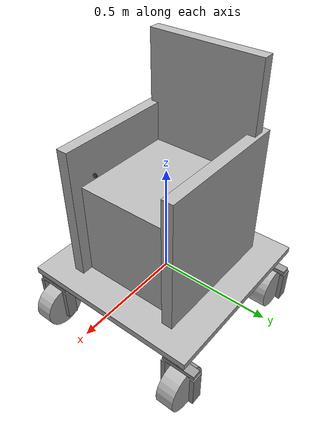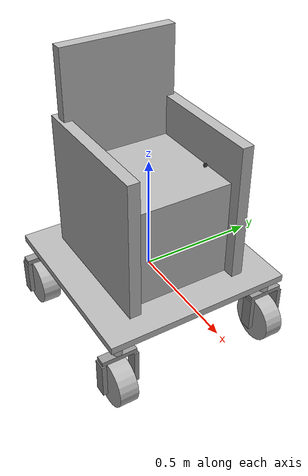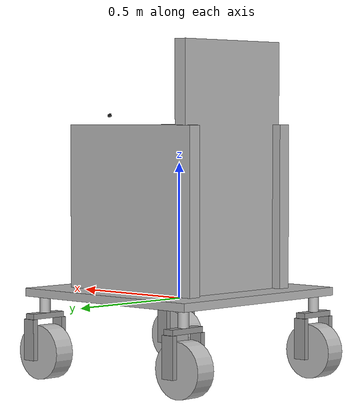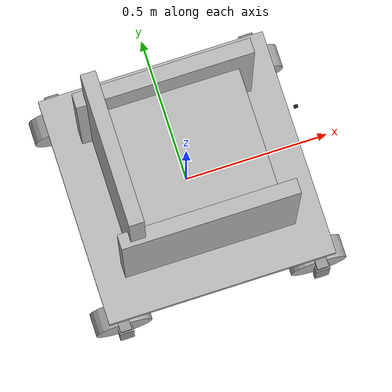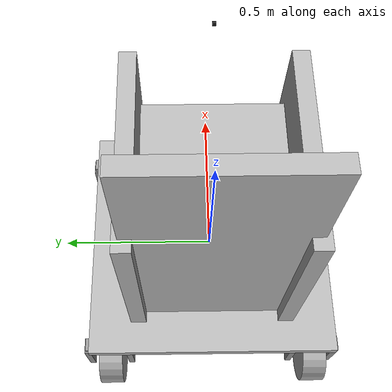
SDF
<sdf version='1.7'>
  <model name='new_wheelchair'>
    <link name='base_link'>
      <inertial>
        <pose>-0.001281 -0 0.086388 0 -0 0</pose>
        <mass>562</mass>
        <inertia>
          <ixx>33.4545</ixx>
          <ixy>1.77793e-20</ixy>
          <ixz>0.279799</ixz>
          <iyy>33.5085</iyy>
          <iyz>-1.0601e-18</iyz>
          <izz>49.3961</izz>
        </inertia>
      </inertial>
      <collision name='base_link_fixed_joint_lump__chassis_link_collision'>
        <pose>0 0 0.025 0 -0 0</pose>
        <geometry>
          <box>
            <size>0.8 0.8 0.03</size>
          </box>
        </geometry>
      </collision>
      <collision name='base_link_fixed_joint_lump__camera_link_collision_collision_1'>
        <pose>0.366544 0 0.673223 0 0.4 0</pose>
        <geometry>
          <box>
            <size>0.01 0.01 0.01</size>
          </box>
        </geometry>
        <surface>
          <contact>
            <ode/>
          </contact>
          <friction>
            <ode/>
          </friction>
        </surface>
      </collision>
      <collision name='base_link_fixed_joint_lump__armrest_left_collision_2'>
        <pose>0 0.24 0.34 0 -0 0</pose>
        <geometry>
          <box>
            <size>0.6 0.05 0.6</size>
          </box>
        </geometry>
      </collision>
      <collision name='base_link_fixed_joint_lump__armrest_right_collision_3'>
        <pose>0 -0.24 0.34 0 -0 0</pose>
        <geometry>
          <box>
            <size>0.6 0.05 0.6</size>
          </box>
        </geometry>
      </collision>
      <collision name='base_link_fixed_joint_lump__backrest_right_collision_4'>
        <pose>-0.24 0 0.49 0 -0 0</pose>
        <geometry>
          <box>
            <size>0.05 0.5 0.9</size>
          </box>
        </geometry>
      </collision>
      <collision name='base_link_fixed_joint_lump__chair_collision_5'>
        <pose>0 0 0.24 0 -0 0</pose>
        <geometry>
          <box>
            <size>0.5 0.5 0.45</size>
          </box>
        </geometry>
      </collision>
      <visual name='base_link_fixed_joint_lump__chassis_link_visual'>
        <pose>0 0 0.025 0 -0 0</pose>
        <geometry>
          <box>
            <size>0.8 0.8 0.03</size>
          </box>
        </geometry>
      </visual>
      <visual name='base_link_fixed_joint_lump__camera_link_visual_visual_1'>
        <pose>0.366544 0 0.673223 0 0.4 0</pose>
        <geometry>
          <box>
            <size>0.01 0.01 0.01</size>
          </box>
        </geometry>
        <material>
          <script>
            <name>Gazebo/Black</name>
            <uri>file://media/materials/scripts/gazebo.material</uri>
          </script>
        </material>
      </visual>
      <visual name='base_link_fixed_joint_lump__armrest_left_visual_2'>
        <pose>0 0.24 0.34 0 -0 0</pose>
        <geometry>
          <box>
            <size>0.6 0.05 0.6</size>
          </box>
        </geometry>
      </visual>
      <visual name='base_link_fixed_joint_lump__armrest_right_visual_3'>
        <pose>0 -0.24 0.34 0 -0 0</pose>
        <geometry>
          <box>
            <size>0.6 0.05 0.6</size>
          </box>
        </geometry>
      </visual>
      <visual name='base_link_fixed_joint_lump__backrest_right_visual_4'>
        <pose>-0.24 0 0.49 0 -0 0</pose>
        <geometry>
          <box>
            <size>0.05 0.5 0.9</size>
          </box>
        </geometry>
      </visual>
      <visual name='base_link_fixed_joint_lump__chair_visual_5'>
        <pose>0 0 0.24 0 -0 0</pose>
        <geometry>
          <box>
            <size>0.5 0.5 0.45</size>
          </box>
        </geometry>
      </visual>
      <velocity_decay/>
      <gravity>1</gravity>
      <velocity_decay/>
      <sensor name='camera1' type='camera'>
        <update_rate>30</update_rate>
        <camera name='head'>
          <horizontal_fov>1.39626</horizontal_fov>
          <image>
            <width>800</width>
            <height>800</height>
            <format>R8G8B8</format>
          </image>
          <clip>
            <near>0.02</near>
            <far>300</far>
          </clip>
          <noise>
            <type>gaussian</type>
            <mean>0</mean>
            <stddev>0.007</stddev>
          </noise>
        </camera>
        <plugin name='camera_controller' filename='libgazebo_ros_camera.so'>
          <alwaysOn>1</alwaysOn>
          <updateRate>30.0</updateRate>
          <cameraName>camera1</cameraName>
          <imageTopicName>image_raw</imageTopicName>
          <cameraInfoTopicName>camera_info</cameraInfoTopicName>
          <frameName>camera_link</frameName>
          <hackBaseline>0.07</hackBaseline>
          <distortionK1>0.0</distortionK1>
          <distortionK2>0.0</distortionK2>
          <distortionK3>0.0</distortionK3>
          <distortionT1>0.0</distortionT1>
          <distortionT2>0.0</distortionT2>
        </plugin>
        <pose>0.15 0 0.36 0 0.2 0</pose>
      </sensor>
    </link>
    <joint name='steer_joint_1' type='revolute'>
      <pose relative_to='base_link'>-0.35 -0.35 0.02 0 -0 0</pose>
      <parent>base_link</parent>
      <child>fork_up_1</child>
      <axis>
        <xyz>0 0 1</xyz>
        <limit>
          <lower>-1e+16</lower>
          <upper>1e+16</upper>
        </limit>
        <dynamics>
          <damping>0.7</damping>
          <friction>0</friction>
          <spring_reference>0</spring_reference>
          <spring_stiffness>0</spring_stiffness>
        </dynamics>
      </axis>
    </joint>
    <link name='fork_up_1'>
      <pose relative_to='steer_joint_1'>0 0 0 0 -0 0</pose>
      <inertial>
        <pose>0 0 -0.08 0 -0 0</pose>
        <mass>1.2</mass>
        <inertia>
          <ixx>0.00460333</ixx>
          <ixy>0</ixy>
          <ixz>0</ixz>
          <iyy>0.00325667</iyy>
          <iyz>0</iyz>
          <izz>0.00170333</izz>
        </inertia>
      </inertial>
      <collision name='fork_up_1_fixed_joint_lump__collision_fork_up_1_collision'>
        <pose>0 0 -0.04 0 -0 0</pose>
        <geometry>
          <cylinder>
            <length>0.08</length>
            <radius>0.02</radius>
          </cylinder>
        </geometry>
      </collision>
      <collision name='fork_up_1_fixed_joint_lump__support_1_collision_1'>
        <pose>0 0 -0.08 0 -0 0</pose>
        <geometry>
          <box>
            <size>0.04 0.15 0.02</size>
          </box>
        </geometry>
        <surface>
          <contact>
            <ode/>
          </contact>
          <friction>
            <ode/>
          </friction>
        </surface>
      </collision>
      <collision name='fork_up_1_fixed_joint_lump__fork_left_1_collision_2'>
        <pose>0 0.07 -0.165 0 -0 0</pose>
        <geometry>
          <box>
            <size>0.05 0.02 0.15</size>
          </box>
        </geometry>
        <surface>
          <contact>
            <ode/>
          </contact>
          <friction>
            <ode/>
          </friction>
        </surface>
      </collision>
      <collision name='fork_up_1_fixed_joint_lump__fork_right_1_collision_3'>
        <pose>0 -0.07 -0.165 0 -0 0</pose>
        <geometry>
          <box>
            <size>0.05 0.02 0.15</size>
          </box>
        </geometry>
        <surface>
          <contact>
            <ode/>
          </contact>
          <friction>
            <ode/>
          </friction>
        </surface>
      </collision>
      <visual name='fork_up_1_fixed_joint_lump__visual_fork_up_1_visual'>
        <pose>0 0 -0.04 0 -0 0</pose>
        <geometry>
          <cylinder>
            <length>0.08</length>
            <radius>0.02</radius>
          </cylinder>
        </geometry>
      </visual>
      <visual name='fork_up_1_fixed_joint_lump__support_1_visual_1'>
        <pose>0 0 -0.08 0 -0 0</pose>
        <geometry>
          <box>
            <size>0.04 0.15 0.02</size>
          </box>
        </geometry>
        <material>
          <script>
            <name>Gazebo/Grey</name>
            <uri>file://media/materials/scripts/gazebo.material</uri>
          </script>
        </material>
      </visual>
      <visual name='fork_up_1_fixed_joint_lump__fork_left_1_visual_2'>
        <pose>0 0.07 -0.165 0 -0 0</pose>
        <geometry>
          <box>
            <size>0.05 0.02 0.15</size>
          </box>
        </geometry>
        <material>
          <script>
            <name>Gazebo/Grey</name>
            <uri>file://media/materials/scripts/gazebo.material</uri>
          </script>
        </material>
      </visual>
      <visual name='fork_up_1_fixed_joint_lump__fork_right_1_visual_3'>
        <pose>0 -0.07 -0.165 0 -0 0</pose>
        <geometry>
          <box>
            <size>0.05 0.02 0.15</size>
          </box>
        </geometry>
        <material>
          <script>
            <name>Gazebo/Grey</name>
            <uri>file://media/materials/scripts/gazebo.material</uri>
          </script>
        </material>
      </visual>
      <velocity_decay/>
      <velocity_decay/>
      <velocity_decay/>
      <gravity>1</gravity>
      <velocity_decay/>
    </link>
    <joint name='wheel_joint_1' type='revolute'>
      <pose relative_to='fork_up_1'>0 -0.005 -0.215 -1.57 0 0</pose>
      <parent>fork_up_1</parent>
      <child>wheel_1</child>
      <axis>
        <xyz>0 0 1</xyz>
        <limit>
          <lower>-1e+16</lower>
          <upper>1e+16</upper>
        </limit>
        <dynamics>
          <damping>0.7</damping>
          <friction>0</friction>
          <spring_reference>0</spring_reference>
          <spring_stiffness>0</spring_stiffness>
        </dynamics>
      </axis>
    </joint>
    <link name='wheel_1'>
      <pose relative_to='wheel_joint_1'>0 0 0 0 -0 0</pose>
      <inertial>
        <pose>0 0 0 0 -0 0</pose>
        <mass>5.5</mass>
        <inertia>
          <ixx>0.0275</ixx>
          <ixy>0</ixy>
          <ixz>0</ixz>
          <iyy>0.01375</iyy>
          <iyz>0</iyz>
          <izz>0.01375</izz>
        </inertia>
      </inertial>
      <collision name='wheel_1_fixed_joint_lump__collision_wheel_1_collision'>
        <pose>0 0 0 0 -0 0</pose>
        <geometry>
          <cylinder>
            <length>0.08</length>
            <radius>0.1</radius>
          </cylinder>
        </geometry>
      </collision>
      <visual name='wheel_1_fixed_joint_lump__visual_wheel_1_visual'>
        <pose>0 0 0 0 -0 0</pose>
        <geometry>
          <cylinder>
            <length>0.08</length>
            <radius>0.1</radius>
          </cylinder>
        </geometry>
      </visual>
      <gravity>1</gravity>
      <velocity_decay/>
    </link>
    <joint name='steer_joint_2' type='revolute'>
      <pose relative_to='base_link'>-0.35 0.35 0.02 0 -0 0</pose>
      <parent>base_link</parent>
      <child>fork_up_2</child>
      <axis>
        <xyz>0 0 1</xyz>
        <limit>
          <lower>-1e+16</lower>
          <upper>1e+16</upper>
        </limit>
        <dynamics>
          <damping>0.7</damping>
          <friction>0</friction>
          <spring_reference>0</spring_reference>
          <spring_stiffness>0</spring_stiffness>
        </dynamics>
      </axis>
    </joint>
    <link name='fork_up_2'>
      <pose relative_to='steer_joint_2'>0 0 0 0 -0 0</pose>
      <inertial>
        <pose>0 0 -0.08 0 -0 0</pose>
        <mass>1.2</mass>
        <inertia>
          <ixx>0.00460333</ixx>
          <ixy>0</ixy>
          <ixz>0</ixz>
          <iyy>0.00325667</iyy>
          <iyz>0</iyz>
          <izz>0.00170333</izz>
        </inertia>
      </inertial>
      <collision name='fork_up_2_fixed_joint_lump__collision_fork_up_2_collision'>
        <pose>0 0 -0.04 0 -0 0</pose>
        <geometry>
          <cylinder>
            <length>0.08</length>
            <radius>0.02</radius>
          </cylinder>
        </geometry>
      </collision>
      <collision name='fork_up_2_fixed_joint_lump__support_2_collision_1'>
        <pose>0 0 -0.08 0 -0 0</pose>
        <geometry>
          <box>
            <size>0.04 0.15 0.02</size>
          </box>
        </geometry>
        <surface>
          <contact>
            <ode/>
          </contact>
          <friction>
            <ode/>
          </friction>
        </surface>
      </collision>
      <collision name='fork_up_2_fixed_joint_lump__fork_left_2_collision_2'>
        <pose>0 0.07 -0.165 0 -0 0</pose>
        <geometry>
          <box>
            <size>0.05 0.02 0.15</size>
          </box>
        </geometry>
        <surface>
          <contact>
            <ode/>
          </contact>
          <friction>
            <ode/>
          </friction>
        </surface>
      </collision>
      <collision name='fork_up_2_fixed_joint_lump__fork_right_2_collision_3'>
        <pose>0 -0.07 -0.165 0 -0 0</pose>
        <geometry>
          <box>
            <size>0.05 0.02 0.15</size>
          </box>
        </geometry>
        <surface>
          <contact>
            <ode/>
          </contact>
          <friction>
            <ode/>
          </friction>
        </surface>
      </collision>
      <visual name='fork_up_2_fixed_joint_lump__visual_fork_up_2_visual'>
        <pose>0 0 -0.04 0 -0 0</pose>
        <geometry>
          <cylinder>
            <length>0.08</length>
            <radius>0.02</radius>
          </cylinder>
        </geometry>
      </visual>
      <visual name='fork_up_2_fixed_joint_lump__support_2_visual_1'>
        <pose>0 0 -0.08 0 -0 0</pose>
        <geometry>
          <box>
            <size>0.04 0.15 0.02</size>
          </box>
        </geometry>
        <material>
          <script>
            <name>Gazebo/Grey</name>
            <uri>file://media/materials/scripts/gazebo.material</uri>
          </script>
        </material>
      </visual>
      <visual name='fork_up_2_fixed_joint_lump__fork_left_2_visual_2'>
        <pose>0 0.07 -0.165 0 -0 0</pose>
        <geometry>
          <box>
            <size>0.05 0.02 0.15</size>
          </box>
        </geometry>
        <material>
          <script>
            <name>Gazebo/Grey</name>
            <uri>file://media/materials/scripts/gazebo.material</uri>
          </script>
        </material>
      </visual>
      <visual name='fork_up_2_fixed_joint_lump__fork_right_2_visual_3'>
        <pose>0 -0.07 -0.165 0 -0 0</pose>
        <geometry>
          <box>
            <size>0.05 0.02 0.15</size>
          </box>
        </geometry>
        <material>
          <script>
            <name>Gazebo/Grey</name>
            <uri>file://media/materials/scripts/gazebo.material</uri>
          </script>
        </material>
      </visual>
      <velocity_decay/>
      <velocity_decay/>
      <velocity_decay/>
      <gravity>1</gravity>
      <velocity_decay/>
    </link>
    <joint name='wheel_joint_2' type='revolute'>
      <pose relative_to='fork_up_2'>0 -0.005 -0.215 -1.57 0 0</pose>
      <parent>fork_up_2</parent>
      <child>wheel_2</child>
      <axis>
        <xyz>0 0 1</xyz>
        <limit>
          <lower>-1e+16</lower>
          <upper>1e+16</upper>
        </limit>
        <dynamics>
          <damping>0.7</damping>
          <friction>0</friction>
          <spring_reference>0</spring_reference>
          <spring_stiffness>0</spring_stiffness>
        </dynamics>
      </axis>
    </joint>
    <link name='wheel_2'>
      <pose relative_to='wheel_joint_2'>0 0 0 0 -0 0</pose>
      <inertial>
        <pose>0 0 0 0 -0 0</pose>
        <mass>5.5</mass>
        <inertia>
          <ixx>0.0275</ixx>
          <ixy>0</ixy>
          <ixz>0</ixz>
          <iyy>0.01375</iyy>
          <iyz>0</iyz>
          <izz>0.01375</izz>
        </inertia>
      </inertial>
      <collision name='wheel_2_fixed_joint_lump__collision_wheel_2_collision'>
        <pose>0 0 0 0 -0 0</pose>
        <geometry>
          <cylinder>
            <length>0.08</length>
            <radius>0.1</radius>
          </cylinder>
        </geometry>
      </collision>
      <visual name='wheel_2_fixed_joint_lump__visual_wheel_2_visual'>
        <pose>0 0 0 0 -0 0</pose>
        <geometry>
          <cylinder>
            <length>0.08</length>
            <radius>0.1</radius>
          </cylinder>
        </geometry>
      </visual>
      <gravity>1</gravity>
      <velocity_decay/>
    </link>
    <joint name='steer_joint_3' type='revolute'>
      <pose relative_to='base_link'>0.35 0.35 0.02 0 -0 0</pose>
      <parent>base_link</parent>
      <child>fork_up_3</child>
      <axis>
        <xyz>0 0 1</xyz>
        <limit>
          <lower>-1e+16</lower>
          <upper>1e+16</upper>
        </limit>
        <dynamics>
          <damping>0.7</damping>
          <friction>0</friction>
          <spring_reference>0</spring_reference>
          <spring_stiffness>0</spring_stiffness>
        </dynamics>
      </axis>
    </joint>
    <link name='fork_up_3'>
      <pose relative_to='steer_joint_3'>0 0 0 0 -0 0</pose>
      <inertial>
        <pose>0 0 -0.08 0 -0 0</pose>
        <mass>1.2</mass>
        <inertia>
          <ixx>0.00460333</ixx>
          <ixy>0</ixy>
          <ixz>0</ixz>
          <iyy>0.00325667</iyy>
          <iyz>0</iyz>
          <izz>0.00170333</izz>
        </inertia>
      </inertial>
      <collision name='fork_up_3_fixed_joint_lump__collision_fork_up_3_collision'>
        <pose>0 0 -0.04 0 -0 0</pose>
        <geometry>
          <cylinder>
            <length>0.08</length>
            <radius>0.02</radius>
          </cylinder>
        </geometry>
      </collision>
      <collision name='fork_up_3_fixed_joint_lump__support_3_collision_1'>
        <pose>0 0 -0.08 0 -0 0</pose>
        <geometry>
          <box>
            <size>0.04 0.15 0.02</size>
          </box>
        </geometry>
        <surface>
          <contact>
            <ode/>
          </contact>
          <friction>
            <ode/>
          </friction>
        </surface>
      </collision>
      <collision name='fork_up_3_fixed_joint_lump__fork_left_3_collision_2'>
        <pose>0 0.07 -0.165 0 -0 0</pose>
        <geometry>
          <box>
            <size>0.05 0.02 0.15</size>
          </box>
        </geometry>
        <surface>
          <contact>
            <ode/>
          </contact>
          <friction>
            <ode/>
          </friction>
        </surface>
      </collision>
      <collision name='fork_up_3_fixed_joint_lump__fork_right_3_collision_3'>
        <pose>0 -0.07 -0.165 0 -0 0</pose>
        <geometry>
          <box>
            <size>0.05 0.02 0.15</size>
          </box>
        </geometry>
        <surface>
          <contact>
            <ode/>
          </contact>
          <friction>
            <ode/>
          </friction>
        </surface>
      </collision>
      <visual name='fork_up_3_fixed_joint_lump__visual_fork_up_3_visual'>
        <pose>0 0 -0.04 0 -0 0</pose>
        <geometry>
          <cylinder>
            <length>0.08</length>
            <radius>0.02</radius>
          </cylinder>
        </geometry>
      </visual>
      <visual name='fork_up_3_fixed_joint_lump__support_3_visual_1'>
        <pose>0 0 -0.08 0 -0 0</pose>
        <geometry>
          <box>
            <size>0.04 0.15 0.02</size>
          </box>
        </geometry>
        <material>
          <script>
            <name>Gazebo/Grey</name>
            <uri>file://media/materials/scripts/gazebo.material</uri>
          </script>
        </material>
      </visual>
      <visual name='fork_up_3_fixed_joint_lump__fork_left_3_visual_2'>
        <pose>0 0.07 -0.165 0 -0 0</pose>
        <geometry>
          <box>
            <size>0.05 0.02 0.15</size>
          </box>
        </geometry>
        <material>
          <script>
            <name>Gazebo/Grey</name>
            <uri>file://media/materials/scripts/gazebo.material</uri>
          </script>
        </material>
      </visual>
      <visual name='fork_up_3_fixed_joint_lump__fork_right_3_visual_3'>
        <pose>0 -0.07 -0.165 0 -0 0</pose>
        <geometry>
          <box>
            <size>0.05 0.02 0.15</size>
          </box>
        </geometry>
        <material>
          <script>
            <name>Gazebo/Grey</name>
            <uri>file://media/materials/scripts/gazebo.material</uri>
          </script>
        </material>
      </visual>
      <velocity_decay/>
      <velocity_decay/>
      <velocity_decay/>
      <gravity>1</gravity>
      <velocity_decay/>
    </link>
    <joint name='wheel_joint_3' type='revolute'>
      <pose relative_to='fork_up_3'>0 -0.005 -0.215 -1.57 0 0</pose>
      <parent>fork_up_3</parent>
      <child>wheel_3</child>
      <axis>
        <xyz>0 0 1</xyz>
        <limit>
          <lower>-1e+16</lower>
          <upper>1e+16</upper>
        </limit>
        <dynamics>
          <damping>0.7</damping>
          <friction>0</friction>
          <spring_reference>0</spring_reference>
          <spring_stiffness>0</spring_stiffness>
        </dynamics>
      </axis>
    </joint>
    <link name='wheel_3'>
      <pose relative_to='wheel_joint_3'>0 0 0 0 -0 0</pose>
      <inertial>
        <pose>0 0 0 0 -0 0</pose>
        <mass>5.5</mass>
        <inertia>
          <ixx>0.0275</ixx>
          <ixy>0</ixy>
          <ixz>0</ixz>
          <iyy>0.01375</iyy>
          <iyz>0</iyz>
          <izz>0.01375</izz>
        </inertia>
      </inertial>
      <collision name='wheel_3_fixed_joint_lump__collision_wheel_3_collision'>
        <pose>0 0 0 0 -0 0</pose>
        <geometry>
          <cylinder>
            <length>0.08</length>
            <radius>0.1</radius>
          </cylinder>
        </geometry>
      </collision>
      <visual name='wheel_3_fixed_joint_lump__visual_wheel_3_visual'>
        <pose>0 0 0 0 -0 0</pose>
        <geometry>
          <cylinder>
            <length>0.08</length>
            <radius>0.1</radius>
          </cylinder>
        </geometry>
      </visual>
      <gravity>1</gravity>
      <velocity_decay/>
    </link>
    <joint name='steer_joint_4' type='revolute'>
      <pose relative_to='base_link'>0.35 -0.35 0.02 0 -0 0</pose>
      <parent>base_link</parent>
      <child>fork_up_4</child>
      <axis>
        <xyz>0 0 1</xyz>
        <limit>
          <lower>-1e+16</lower>
          <upper>1e+16</upper>
        </limit>
        <dynamics>
          <damping>0.7</damping>
          <friction>0</friction>
          <spring_reference>0</spring_reference>
          <spring_stiffness>0</spring_stiffness>
        </dynamics>
      </axis>
    </joint>
    <link name='fork_up_4'>
      <pose relative_to='steer_joint_4'>0 0 0 0 -0 0</pose>
      <inertial>
        <pose>0 0 -0.08 0 -0 0</pose>
        <mass>1.2</mass>
        <inertia>
          <ixx>0.00460333</ixx>
          <ixy>0</ixy>
          <ixz>0</ixz>
          <iyy>0.00325667</iyy>
          <iyz>0</iyz>
          <izz>0.00170333</izz>
        </inertia>
      </inertial>
      <collision name='fork_up_4_fixed_joint_lump__collision_fork_up_4_collision'>
        <pose>0 0 -0.04 0 -0 0</pose>
        <geometry>
          <cylinder>
            <length>0.08</length>
            <radius>0.02</radius>
          </cylinder>
        </geometry>
      </collision>
      <collision name='fork_up_4_fixed_joint_lump__support_4_collision_1'>
        <pose>0 0 -0.08 0 -0 0</pose>
        <geometry>
          <box>
            <size>0.04 0.15 0.02</size>
          </box>
        </geometry>
        <surface>
          <contact>
            <ode/>
          </contact>
          <friction>
            <ode/>
          </friction>
        </surface>
      </collision>
      <collision name='fork_up_4_fixed_joint_lump__fork_left_4_collision_2'>
        <pose>0 0.07 -0.165 0 -0 0</pose>
        <geometry>
          <box>
            <size>0.05 0.02 0.15</size>
          </box>
        </geometry>
        <surface>
          <contact>
            <ode/>
          </contact>
          <friction>
            <ode/>
          </friction>
        </surface>
      </collision>
      <collision name='fork_up_4_fixed_joint_lump__fork_right_4_collision_3'>
        <pose>0 -0.07 -0.165 0 -0 0</pose>
        <geometry>
          <box>
            <size>0.05 0.02 0.15</size>
          </box>
        </geometry>
        <surface>
          <contact>
            <ode/>
          </contact>
          <friction>
            <ode/>
          </friction>
        </surface>
      </collision>
      <visual name='fork_up_4_fixed_joint_lump__visual_fork_up_4_visual'>
        <pose>0 0 -0.04 0 -0 0</pose>
        <geometry>
          <cylinder>
            <length>0.08</length>
            <radius>0.02</radius>
          </cylinder>
        </geometry>
      </visual>
      <visual name='fork_up_4_fixed_joint_lump__support_4_visual_1'>
        <pose>0 0 -0.08 0 -0 0</pose>
        <geometry>
          <box>
            <size>0.04 0.15 0.02</size>
          </box>
        </geometry>
        <material>
          <script>
            <name>Gazebo/Grey</name>
            <uri>file://media/materials/scripts/gazebo.material</uri>
          </script>
        </material>
      </visual>
      <visual name='fork_up_4_fixed_joint_lump__fork_left_4_visual_2'>
        <pose>0 0.07 -0.165 0 -0 0</pose>
        <geometry>
          <box>
            <size>0.05 0.02 0.15</size>
          </box>
        </geometry>
        <material>
          <script>
            <name>Gazebo/Grey</name>
            <uri>file://media/materials/scripts/gazebo.material</uri>
          </script>
        </material>
      </visual>
      <visual name='fork_up_4_fixed_joint_lump__fork_right_4_visual_3'>
        <pose>0 -0.07 -0.165 0 -0 0</pose>
        <geometry>
          <box>
            <size>0.05 0.02 0.15</size>
          </box>
        </geometry>
        <material>
          <script>
            <name>Gazebo/Grey</name>
            <uri>file://media/materials/scripts/gazebo.material</uri>
          </script>
        </material>
      </visual>
      <velocity_decay/>
      <velocity_decay/>
      <velocity_decay/>
      <gravity>1</gravity>
      <velocity_decay/>
    </link>
    <joint name='wheel_joint_4' type='revolute'>
      <pose relative_to='fork_up_4'>0 -0.005 -0.215 -1.57 0 0</pose>
      <parent>fork_up_4</parent>
      <child>wheel_4</child>
      <axis>
        <xyz>0 0 1</xyz>
        <limit>
          <lower>-1e+16</lower>
          <upper>1e+16</upper>
        </limit>
        <dynamics>
          <damping>0.7</damping>
          <friction>0</friction>
          <spring_reference>0</spring_reference>
          <spring_stiffness>0</spring_stiffness>
        </dynamics>
      </axis>
    </joint>
    <link name='wheel_4'>
      <pose relative_to='wheel_joint_4'>0 0 0 0 -0 0</pose>
      <inertial>
        <pose>0 0 0 0 -0 0</pose>
        <mass>5.5</mass>
        <inertia>
          <ixx>0.0275</ixx>
          <ixy>0</ixy>
          <ixz>0</ixz>
          <iyy>0.01375</iyy>
          <iyz>0</iyz>
          <izz>0.01375</izz>
        </inertia>
      </inertial>
      <collision name='wheel_4_fixed_joint_lump__collision_wheel_4_collision'>
        <pose>0 0 0 0 -0 0</pose>
        <geometry>
          <cylinder>
            <length>0.08</length>
            <radius>0.1</radius>
          </cylinder>
        </geometry>
      </collision>
      <visual name='wheel_4_fixed_joint_lump__visual_wheel_4_visual'>
        <pose>0 0 0 0 -0 0</pose>
        <geometry>
          <cylinder>
            <length>0.08</length>
            <radius>0.1</radius>
          </cylinder>
        </geometry>
      </visual>
      <gravity>1</gravity>
      <velocity_decay/>
    </link>
    <joint name='steer_joint_1' type='revolute'>
      <pose relative_to='base_link'>-0.35 -0.35 0.02 0 -0 0</pose>
      <parent>base_link</parent>
      <child>fork_up_1</child>
      <axis>
        <xyz>0 0 1</xyz>
        <limit>
          <lower>-1e+16</lower>
          <upper>1e+16</upper>
        </limit>
        <dynamics>
          <damping>0.7</damping>
          <friction>0</friction>
          <spring_reference>0</spring_reference>
          <spring_stiffness>0</spring_stiffness>
        </dynamics>
      </axis>
    </joint>
    <link name='fork_up_1'>
      <pose relative_to='steer_joint_1'>0 0 0 0 -0 0</pose>
      <inertial>
        <pose>0 0 -0.08 0 -0 0</pose>
        <mass>1.2</mass>
        <inertia>
          <ixx>0.00460333</ixx>
          <ixy>0</ixy>
          <ixz>0</ixz>
          <iyy>0.00325667</iyy>
          <iyz>0</iyz>
          <izz>0.00170333</izz>
        </inertia>
      </inertial>
      <collision name='fork_up_1_fixed_joint_lump__collision_fork_up_1_collision'>
        <pose>0 0 -0.04 0 -0 0</pose>
        <geometry>
          <cylinder>
            <length>0.08</length>
            <radius>0.02</radius>
          </cylinder>
        </geometry>
      </collision>
      <collision name='fork_up_1_fixed_joint_lump__support_1_collision_1'>
        <pose>0 0 -0.08 0 -0 0</pose>
        <geometry>
          <box>
            <size>0.04 0.15 0.02</size>
          </box>
        </geometry>
        <surface>
          <contact>
            <ode/>
          </contact>
          <friction>
            <ode/>
          </friction>
        </surface>
      </collision>
      <collision name='fork_up_1_fixed_joint_lump__fork_left_1_collision_2'>
        <pose>0 0.07 -0.165 0 -0 0</pose>
        <geometry>
          <box>
            <size>0.05 0.02 0.15</size>
          </box>
        </geometry>
        <surface>
          <contact>
            <ode/>
          </contact>
          <friction>
            <ode/>
          </friction>
        </surface>
      </collision>
      <collision name='fork_up_1_fixed_joint_lump__fork_right_1_collision_3'>
        <pose>0 -0.07 -0.165 0 -0 0</pose>
        <geometry>
          <box>
            <size>0.05 0.02 0.15</size>
          </box>
        </geometry>
        <surface>
          <contact>
            <ode/>
          </contact>
          <friction>
            <ode/>
          </friction>
        </surface>
      </collision>
      <visual name='fork_up_1_fixed_joint_lump__visual_fork_up_1_visual'>
        <pose>0 0 -0.04 0 -0 0</pose>
        <geometry>
          <cylinder>
            <length>0.08</length>
            <radius>0.02</radius>
          </cylinder>
        </geometry>
      </visual>
      <visual name='fork_up_1_fixed_joint_lump__support_1_visual_1'>
        <pose>0 0 -0.08 0 -0 0</pose>
        <geometry>
          <box>
            <size>0.04 0.15 0.02</size>
          </box>
        </geometry>
        <material>
          <script>
            <name>Gazebo/Grey</name>
            <uri>file://media/materials/scripts/gazebo.material</uri>
          </script>
        </material>
      </visual>
      <visual name='fork_up_1_fixed_joint_lump__fork_left_1_visual_2'>
        <pose>0 0.07 -0.165 0 -0 0</pose>
        <geometry>
          <box>
            <size>0.05 0.02 0.15</size>
          </box>
        </geometry>
        <material>
          <script>
            <name>Gazebo/Grey</name>
            <uri>file://media/materials/scripts/gazebo.material</uri>
          </script>
        </material>
      </visual>
      <visual name='fork_up_1_fixed_joint_lump__fork_right_1_visual_3'>
        <pose>0 -0.07 -0.165 0 -0 0</pose>
        <geometry>
          <box>
            <size>0.05 0.02 0.15</size>
          </box>
        </geometry>
        <material>
          <script>
            <name>Gazebo/Grey</name>
            <uri>file://media/materials/scripts/gazebo.material</uri>
          </script>
        </material>
      </visual>
      <velocity_decay/>
      <velocity_decay/>
      <velocity_decay/>
      <gravity>1</gravity>
      <velocity_decay/>
    </link>
    <joint name='wheel_joint_1' type='revolute'>
      <pose relative_to='fork_up_1'>0 -0.005 -0.215 -1.57 0 0</pose>
      <parent>fork_up_1</parent>
      <child>wheel_1</child>
      <axis>
        <xyz>0 0 1</xyz>
        <limit>
          <lower>-1e+16</lower>
          <upper>1e+16</upper>
        </limit>
        <dynamics>
          <damping>0.7</damping>
          <friction>0</friction>
          <spring_reference>0</spring_reference>
          <spring_stiffness>0</spring_stiffness>
        </dynamics>
      </axis>
    </joint>
    <link name='wheel_1'>
      <pose relative_to='wheel_joint_1'>0 0 0 0 -0 0</pose>
      <inertial>
        <pose>0 0 0 0 -0 0</pose>
        <mass>5.5</mass>
        <inertia>
          <ixx>0.0275</ixx>
          <ixy>0</ixy>
          <ixz>0</ixz>
          <iyy>0.01375</iyy>
          <iyz>0</iyz>
          <izz>0.01375</izz>
        </inertia>
      </inertial>
      <collision name='wheel_1_fixed_joint_lump__collision_wheel_1_collision'>
        <pose>0 0 0 0 -0 0</pose>
        <geometry>
          <cylinder>
            <length>0.08</length>
            <radius>0.1</radius>
          </cylinder>
        </geometry>
      </collision>
      <visual name='wheel_1_fixed_joint_lump__visual_wheel_1_visual'>
        <pose>0 0 0 0 -0 0</pose>
        <geometry>
          <cylinder>
            <length>0.08</length>
            <radius>0.1</radius>
          </cylinder>
        </geometry>
      </visual>
      <gravity>1</gravity>
      <velocity_decay/>
    </link>
    <joint name='steer_joint_2' type='revolute'>
      <pose relative_to='base_link'>-0.35 0.35 0.02 0 -0 0</pose>
      <parent>base_link</parent>
      <child>fork_up_2</child>
      <axis>
        <xyz>0 0 1</xyz>
        <limit>
          <lower>-1e+16</lower>
          <upper>1e+16</upper>
        </limit>
        <dynamics>
          <damping>0.7</damping>
          <friction>0</friction>
          <spring_reference>0</spring_reference>
          <spring_stiffness>0</spring_stiffness>
        </dynamics>
      </axis>
    </joint>
    <link name='fork_up_2'>
      <pose relative_to='steer_joint_2'>0 0 0 0 -0 0</pose>
      <inertial>
        <pose>0 0 -0.08 0 -0 0</pose>
        <mass>1.2</mass>
        <inertia>
          <ixx>0.00460333</ixx>
          <ixy>0</ixy>
          <ixz>0</ixz>
          <iyy>0.00325667</iyy>
          <iyz>0</iyz>
          <izz>0.00170333</izz>
        </inertia>
      </inertial>
      <collision name='fork_up_2_fixed_joint_lump__collision_fork_up_2_collision'>
        <pose>0 0 -0.04 0 -0 0</pose>
        <geometry>
          <cylinder>
            <length>0.08</length>
            <radius>0.02</radius>
          </cylinder>
        </geometry>
      </collision>
      <collision name='fork_up_2_fixed_joint_lump__support_2_collision_1'>
        <pose>0 0 -0.08 0 -0 0</pose>
        <geometry>
          <box>
            <size>0.04 0.15 0.02</size>
          </box>
        </geometry>
        <surface>
          <contact>
            <ode/>
          </contact>
          <friction>
            <ode/>
          </friction>
        </surface>
      </collision>
      <collision name='fork_up_2_fixed_joint_lump__fork_left_2_collision_2'>
        <pose>0 0.07 -0.165 0 -0 0</pose>
        <geometry>
          <box>
            <size>0.05 0.02 0.15</size>
          </box>
        </geometry>
        <surface>
          <contact>
            <ode/>
          </contact>
          <friction>
            <ode/>
          </friction>
        </surface>
      </collision>
      <collision name='fork_up_2_fixed_joint_lump__fork_right_2_collision_3'>
        <pose>0 -0.07 -0.165 0 -0 0</pose>
        <geometry>
          <box>
            <size>0.05 0.02 0.15</size>
          </box>
        </geometry>
        <surface>
          <contact>
            <ode/>
          </contact>
          <friction>
            <ode/>
          </friction>
        </surface>
      </collision>
      <visual name='fork_up_2_fixed_joint_lump__visual_fork_up_2_visual'>
        <pose>0 0 -0.04 0 -0 0</pose>
        <geometry>
          <cylinder>
            <length>0.08</length>
            <radius>0.02</radius>
          </cylinder>
        </geometry>
      </visual>
      <visual name='fork_up_2_fixed_joint_lump__support_2_visual_1'>
        <pose>0 0 -0.08 0 -0 0</pose>
        <geometry>
          <box>
            <size>0.04 0.15 0.02</size>
          </box>
        </geometry>
        <material>
          <script>
            <name>Gazebo/Grey</name>
            <uri>file://media/materials/scripts/gazebo.material</uri>
          </script>
        </material>
      </visual>
      <visual name='fork_up_2_fixed_joint_lump__fork_left_2_visual_2'>
        <pose>0 0.07 -0.165 0 -0 0</pose>
        <geometry>
          <box>
            <size>0.05 0.02 0.15</size>
          </box>
        </geometry>
        <material>
          <script>
            <name>Gazebo/Grey</name>
            <uri>file://media/materials/scripts/gazebo.material</uri>
          </script>
        </material>
      </visual>
      <visual name='fork_up_2_fixed_joint_lump__fork_right_2_visual_3'>
        <pose>0 -0.07 -0.165 0 -0 0</pose>
        <geometry>
          <box>
            <size>0.05 0.02 0.15</size>
          </box>
        </geometry>
        <material>
          <script>
            <name>Gazebo/Grey</name>
            <uri>file://media/materials/scripts/gazebo.material</uri>
          </script>
        </material>
      </visual>
      <velocity_decay/>
      <velocity_decay/>
      <velocity_decay/>
      <gravity>1</gravity>
      <velocity_decay/>
    </link>
    <joint name='wheel_joint_2' type='revolute'>
      <pose relative_to='fork_up_2'>0 -0.005 -0.215 -1.57 0 0</pose>
      <parent>fork_up_2</parent>
      <child>wheel_2</child>
      <axis>
        <xyz>0 0 1</xyz>
        <limit>
          <lower>-1e+16</lower>
          <upper>1e+16</upper>
        </limit>
        <dynamics>
          <damping>0.7</damping>
          <friction>0</friction>
          <spring_reference>0</spring_reference>
          <spring_stiffness>0</spring_stiffness>
        </dynamics>
      </axis>
    </joint>
    <link name='wheel_2'>
      <pose relative_to='wheel_joint_2'>0 0 0 0 -0 0</pose>
      <inertial>
        <pose>0 0 0 0 -0 0</pose>
        <mass>5.5</mass>
        <inertia>
          <ixx>0.0275</ixx>
          <ixy>0</ixy>
          <ixz>0</ixz>
          <iyy>0.01375</iyy>
          <iyz>0</iyz>
          <izz>0.01375</izz>
        </inertia>
      </inertial>
      <collision name='wheel_2_fixed_joint_lump__collision_wheel_2_collision'>
        <pose>0 0 0 0 -0 0</pose>
        <geometry>
          <cylinder>
            <length>0.08</length>
            <radius>0.1</radius>
          </cylinder>
        </geometry>
      </collision>
      <visual name='wheel_2_fixed_joint_lump__visual_wheel_2_visual'>
        <pose>0 0 0 0 -0 0</pose>
        <geometry>
          <cylinder>
            <length>0.08</length>
            <radius>0.1</radius>
          </cylinder>
        </geometry>
      </visual>
      <gravity>1</gravity>
      <velocity_decay/>
    </link>
    <joint name='steer_joint_3' type='revolute'>
      <pose relative_to='base_link'>0.35 0.35 0.02 0 -0 0</pose>
      <parent>base_link</parent>
      <child>fork_up_3</child>
      <axis>
        <xyz>0 0 1</xyz>
        <limit>
          <lower>-1e+16</lower>
          <upper>1e+16</upper>
        </limit>
        <dynamics>
          <damping>0.7</damping>
          <friction>0</friction>
          <spring_reference>0</spring_reference>
          <spring_stiffness>0</spring_stiffness>
        </dynamics>
      </axis>
    </joint>
    <link name='fork_up_3'>
      <pose relative_to='steer_joint_3'>0 0 0 0 -0 0</pose>
      <inertial>
        <pose>0 0 -0.08 0 -0 0</pose>
        <mass>1.2</mass>
        <inertia>
          <ixx>0.00460333</ixx>
          <ixy>0</ixy>
          <ixz>0</ixz>
          <iyy>0.00325667</iyy>
          <iyz>0</iyz>
          <izz>0.00170333</izz>
        </inertia>
      </inertial>
      <collision name='fork_up_3_fixed_joint_lump__collision_fork_up_3_collision'>
        <pose>0 0 -0.04 0 -0 0</pose>
        <geometry>
          <cylinder>
            <length>0.08</length>
            <radius>0.02</radius>
          </cylinder>
        </geometry>
      </collision>
      <collision name='fork_up_3_fixed_joint_lump__support_3_collision_1'>
        <pose>0 0 -0.08 0 -0 0</pose>
        <geometry>
          <box>
            <size>0.04 0.15 0.02</size>
          </box>
        </geometry>
        <surface>
          <contact>
            <ode/>
          </contact>
          <friction>
            <ode/>
          </friction>
        </surface>
      </collision>
      <collision name='fork_up_3_fixed_joint_lump__fork_left_3_collision_2'>
        <pose>0 0.07 -0.165 0 -0 0</pose>
        <geometry>
          <box>
            <size>0.05 0.02 0.15</size>
          </box>
        </geometry>
        <surface>
          <contact>
            <ode/>
          </contact>
          <friction>
            <ode/>
          </friction>
        </surface>
      </collision>
      <collision name='fork_up_3_fixed_joint_lump__fork_right_3_collision_3'>
        <pose>0 -0.07 -0.165 0 -0 0</pose>
        <geometry>
          <box>
            <size>0.05 0.02 0.15</size>
          </box>
        </geometry>
        <surface>
          <contact>
            <ode/>
          </contact>
          <friction>
            <ode/>
          </friction>
        </surface>
      </collision>
      <visual name='fork_up_3_fixed_joint_lump__visual_fork_up_3_visual'>
        <pose>0 0 -0.04 0 -0 0</pose>
        <geometry>
          <cylinder>
            <length>0.08</length>
            <radius>0.02</radius>
          </cylinder>
        </geometry>
      </visual>
      <visual name='fork_up_3_fixed_joint_lump__support_3_visual_1'>
        <pose>0 0 -0.08 0 -0 0</pose>
        <geometry>
          <box>
            <size>0.04 0.15 0.02</size>
          </box>
        </geometry>
        <material>
          <script>
            <name>Gazebo/Grey</name>
            <uri>file://media/materials/scripts/gazebo.material</uri>
          </script>
        </material>
      </visual>
      <visual name='fork_up_3_fixed_joint_lump__fork_left_3_visual_2'>
        <pose>0 0.07 -0.165 0 -0 0</pose>
        <geometry>
          <box>
            <size>0.05 0.02 0.15</size>
          </box>
        </geometry>
        <material>
          <script>
            <name>Gazebo/Grey</name>
            <uri>file://media/materials/scripts/gazebo.material</uri>
          </script>
        </material>
      </visual>
      <visual name='fork_up_3_fixed_joint_lump__fork_right_3_visual_3'>
        <pose>0 -0.07 -0.165 0 -0 0</pose>
        <geometry>
          <box>
            <size>0.05 0.02 0.15</size>
          </box>
        </geometry>
        <material>
          <script>
            <name>Gazebo/Grey</name>
            <uri>file://media/materials/scripts/gazebo.material</uri>
          </script>
        </material>
      </visual>
      <velocity_decay/>
      <velocity_decay/>
      <velocity_decay/>
      <gravity>1</gravity>
      <velocity_decay/>
    </link>
    <joint name='wheel_joint_3' type='revolute'>
      <pose relative_to='fork_up_3'>0 -0.005 -0.215 -1.57 0 0</pose>
      <parent>fork_up_3</parent>
      <child>wheel_3</child>
      <axis>
        <xyz>0 0 1</xyz>
        <limit>
          <lower>-1e+16</lower>
          <upper>1e+16</upper>
        </limit>
        <dynamics>
          <damping>0.7</damping>
          <friction>0</friction>
          <spring_reference>0</spring_reference>
          <spring_stiffness>0</spring_stiffness>
        </dynamics>
      </axis>
    </joint>
    <link name='wheel_3'>
      <pose relative_to='wheel_joint_3'>0 0 0 0 -0 0</pose>
      <inertial>
        <pose>0 0 0 0 -0 0</pose>
        <mass>5.5</mass>
        <inertia>
          <ixx>0.0275</ixx>
          <ixy>0</ixy>
          <ixz>0</ixz>
          <iyy>0.01375</iyy>
          <iyz>0</iyz>
          <izz>0.01375</izz>
        </inertia>
      </inertial>
      <collision name='wheel_3_fixed_joint_lump__collision_wheel_3_collision'>
        <pose>0 0 0 0 -0 0</pose>
        <geometry>
          <cylinder>
            <length>0.08</length>
            <radius>0.1</radius>
          </cylinder>
        </geometry>
      </collision>
      <visual name='wheel_3_fixed_joint_lump__visual_wheel_3_visual'>
        <pose>0 0 0 0 -0 0</pose>
        <geometry>
          <cylinder>
            <length>0.08</length>
            <radius>0.1</radius>
          </cylinder>
        </geometry>
      </visual>
      <gravity>1</gravity>
      <velocity_decay/>
    </link>
    <joint name='steer_joint_4' type='revolute'>
      <pose relative_to='base_link'>0.35 -0.35 0.02 0 -0 0</pose>
      <parent>base_link</parent>
      <child>fork_up_4</child>
      <axis>
        <xyz>0 0 1</xyz>
        <limit>
          <lower>-1e+16</lower>
          <upper>1e+16</upper>
        </limit>
        <dynamics>
          <damping>0.7</damping>
          <friction>0</friction>
          <spring_reference>0</spring_reference>
          <spring_stiffness>0</spring_stiffness>
        </dynamics>
      </axis>
    </joint>
    <link name='fork_up_4'>
      <pose relative_to='steer_joint_4'>0 0 0 0 -0 0</pose>
      <inertial>
        <pose>0 0 -0.08 0 -0 0</pose>
        <mass>1.2</mass>
        <inertia>
          <ixx>0.00460333</ixx>
          <ixy>0</ixy>
          <ixz>0</ixz>
          <iyy>0.00325667</iyy>
          <iyz>0</iyz>
          <izz>0.00170333</izz>
        </inertia>
      </inertial>
      <collision name='fork_up_4_fixed_joint_lump__collision_fork_up_4_collision'>
        <pose>0 0 -0.04 0 -0 0</pose>
        <geometry>
          <cylinder>
            <length>0.08</length>
            <radius>0.02</radius>
          </cylinder>
        </geometry>
      </collision>
      <collision name='fork_up_4_fixed_joint_lump__support_4_collision_1'>
        <pose>0 0 -0.08 0 -0 0</pose>
        <geometry>
          <box>
            <size>0.04 0.15 0.02</size>
          </box>
        </geometry>
        <surface>
          <contact>
            <ode/>
          </contact>
          <friction>
            <ode/>
          </friction>
        </surface>
      </collision>
      <collision name='fork_up_4_fixed_joint_lump__fork_left_4_collision_2'>
        <pose>0 0.07 -0.165 0 -0 0</pose>
        <geometry>
          <box>
            <size>0.05 0.02 0.15</size>
          </box>
        </geometry>
        <surface>
          <contact>
            <ode/>
          </contact>
          <friction>
            <ode/>
          </friction>
        </surface>
      </collision>
      <collision name='fork_up_4_fixed_joint_lump__fork_right_4_collision_3'>
        <pose>0 -0.07 -0.165 0 -0 0</pose>
        <geometry>
          <box>
            <size>0.05 0.02 0.15</size>
          </box>
        </geometry>
        <surface>
          <contact>
            <ode/>
          </contact>
          <friction>
            <ode/>
          </friction>
        </surface>
      </collision>
      <visual name='fork_up_4_fixed_joint_lump__visual_fork_up_4_visual'>
        <pose>0 0 -0.04 0 -0 0</pose>
        <geometry>
          <cylinder>
            <length>0.08</length>
            <radius>0.02</radius>
          </cylinder>
        </geometry>
      </visual>
      <visual name='fork_up_4_fixed_joint_lump__support_4_visual_1'>
        <pose>0 0 -0.08 0 -0 0</pose>
        <geometry>
          <box>
            <size>0.04 0.15 0.02</size>
          </box>
        </geometry>
        <material>
          <script>
            <name>Gazebo/Grey</name>
            <uri>file://media/materials/scripts/gazebo.material</uri>
          </script>
        </material>
      </visual>
      <visual name='fork_up_4_fixed_joint_lump__fork_left_4_visual_2'>
        <pose>0 0.07 -0.165 0 -0 0</pose>
        <geometry>
          <box>
            <size>0.05 0.02 0.15</size>
          </box>
        </geometry>
        <material>
          <script>
            <name>Gazebo/Grey</name>
            <uri>file://media/materials/scripts/gazebo.material</uri>
          </script>
        </material>
      </visual>
      <visual name='fork_up_4_fixed_joint_lump__fork_right_4_visual_3'>
        <pose>0 -0.07 -0.165 0 -0 0</pose>
        <geometry>
          <box>
            <size>0.05 0.02 0.15</size>
          </box>
        </geometry>
        <material>
          <script>
            <name>Gazebo/Grey</name>
            <uri>file://media/materials/scripts/gazebo.material</uri>
          </script>
        </material>
      </visual>
      <velocity_decay/>
      <velocity_decay/>
      <velocity_decay/>
      <gravity>1</gravity>
      <velocity_decay/>
    </link>
    <joint name='wheel_joint_4' type='revolute'>
      <pose relative_to='fork_up_4'>0 -0.005 -0.215 -1.57 0 0</pose>
      <parent>fork_up_4</parent>
      <child>wheel_4</child>
      <axis>
        <xyz>0 0 1</xyz>
        <limit>
          <lower>-1e+16</lower>
          <upper>1e+16</upper>
        </limit>
        <dynamics>
          <damping>0.7</damping>
          <friction>0</friction>
          <spring_reference>0</spring_reference>
          <spring_stiffness>0</spring_stiffness>
        </dynamics>
      </axis>
    </joint>
    <link name='wheel_4'>
      <pose relative_to='wheel_joint_4'>0 0 0 0 -0 0</pose>
      <inertial>
        <pose>0 0 0 0 -0 0</pose>
        <mass>5.5</mass>
        <inertia>
          <ixx>0.0275</ixx>
          <ixy>0</ixy>
          <ixz>0</ixz>
          <iyy>0.01375</iyy>
          <iyz>0</iyz>
          <izz>0.01375</izz>
        </inertia>
      </inertial>
      <collision name='wheel_4_fixed_joint_lump__collision_wheel_4_collision'>
        <pose>0 0 0 0 -0 0</pose>
        <geometry>
          <cylinder>
            <length>0.08</length>
            <radius>0.1</radius>
          </cylinder>
        </geometry>
      </collision>
      <visual name='wheel_4_fixed_joint_lump__visual_wheel_4_visual'>
        <pose>0 0 0 0 -0 0</pose>
        <geometry>
          <cylinder>
            <length>0.08</length>
            <radius>0.1</radius>
          </cylinder>
        </geometry>
      </visual>
      <gravity>1</gravity>
      <velocity_decay/>
    </link>
    <plugin name='ground_truth' filename='libgazebo_ros_p3d.so'>
      <alwaysOn>1</alwaysOn>
      <updateRate>50.0</updateRate>
      <gaussianNoise>0.01</gaussianNoise>
      <bodyName>base_link</bodyName>
      <topicName>odomw</topicName>
    </plugin>
    <static>0</static>
    <plugin name='gazebo_ros_control' filename='libgazebo_ros_control.so'>
      <robotNamespace>/</robotNamespace>
      <robotSimType>gazebo_ros_control/DefaultRobotHWSim</robotSimType>
    </plugin>
  </model>
</sdf>
